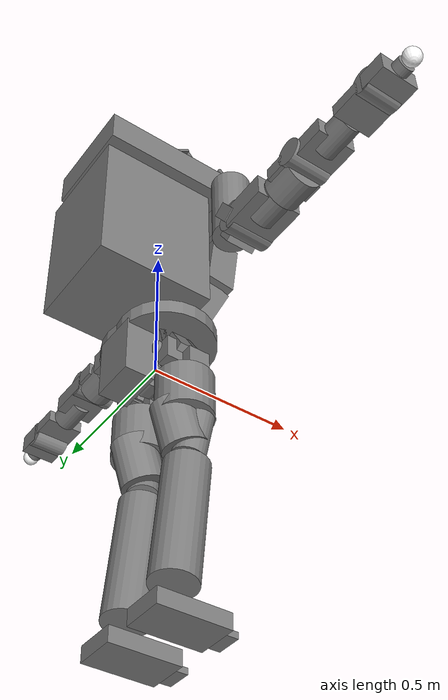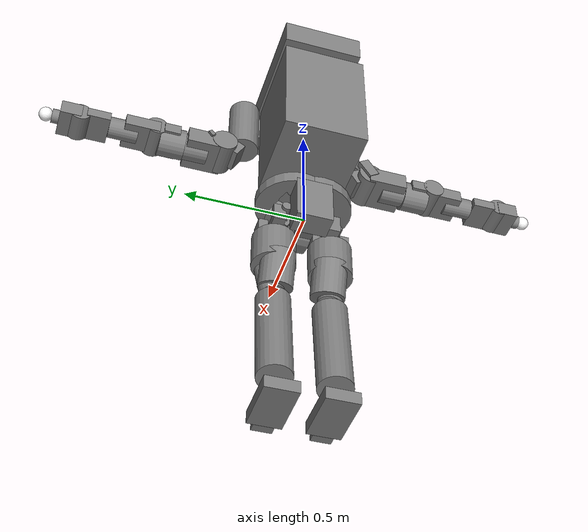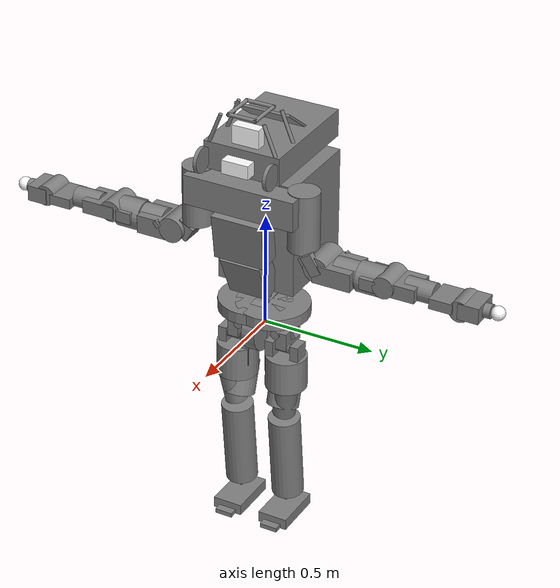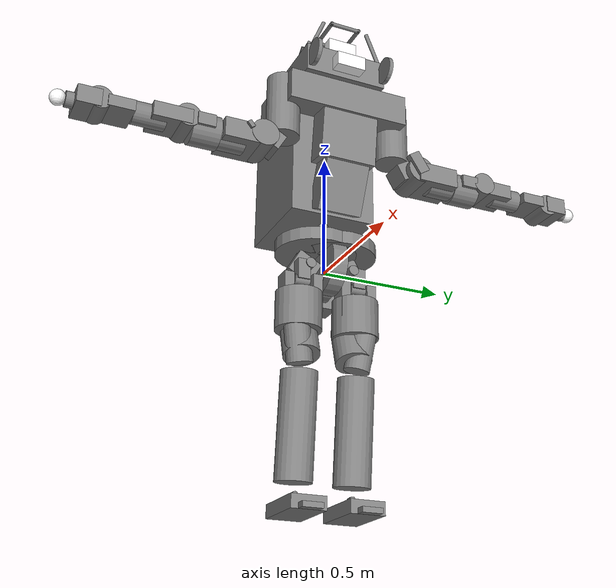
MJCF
<mujoco model="multisense_sl">
    <compiler angle="radian" />
    <size njmax="500" nconmax="100" />
    <worldbody>
        <geom size="0.11 0.03" pos="0.046 0 0.01" quat="0.707107 0.707107 0 0" type="cylinder" />
        <geom size="0.11 0.03" pos="-0.03 0 0.01" quat="0.707107 0.707107 0 0" type="cylinder" />
        <geom size="0.16 0.025" pos="0.01 0.042 0.09" type="cylinder" />
        <geom size="0.16 0.025" pos="0.01 -0.042 0.09" type="cylinder" />
        <geom size="0.05 0.075 0.1" pos="-0.1 0 -0.02" type="box" />
        <body name="ltorso" pos="-0.0125 0 0">
            <inertial pos="-0.0112984 -3.15366e-06 0.0746835" quat="0.997071 0.000128212 0.076485 -0.00012406" mass="2.27" diaginertia="0.003962 0.00341694 0.00169212" />
            <joint name="back_bkz" pos="0 0 0" axis="0 0 1" limited="true" range="-0.663225 0.663225" damping="0.1" />
            <body name="mtorso" pos="0 0 0.162">
                <inertial pos="-0.00816266 -0.0131245 0.0305974" quat="0.108378 0.49314 0.746335 0.433648" mass="0.799" diaginertia="0.000536243 0.000487378 0.000358057" />
                <joint name="back_bky" pos="0 0 0" axis="0 1 0" limited="true" range="-0.219388 0.538783" damping="0.1" />
                <geom size="0.02 0.075" pos="0 0 0.02" type="cylinder" />
                <body name="utorso" pos="0 0 0.05">
                    <inertial pos="-0.0622 0.0023 0.3157" quat="0.450601 -0.0341277 -0.0439518 0.89099" mass="84.409" diaginertia="1.62425 1.5673 0.552443" />
                    <joint name="back_bkx" pos="0 0 0" axis="1 0 0" limited="true" range="-0.523599 0.523599" damping="0.1" />
                    <geom size="0.2 0.175 0.25" pos="-0.102 0 0.25" type="box" />
                    <geom size="0.065 0.25 0.05" pos="0.2 0 0.46" quat="0.707141 0 0.707073 0" type="box" />
                    <geom size="0.1 0.115 0.05" pos="0.2 0 0.285" quat="0.659983 0 0.75128 0" type="box" />
                    <geom size="0.1 0.09 0.05" pos="0.15 0 0.1" quat="0.540302 0 0.841471 0" type="box" />
                    <geom size="0.253153 0.170859 0.06" pos="-0.035 0 0.6265" type="box" />
                    <geom size="0.008 0.065" pos="0.208 0 0.8215" quat="0.707141 0.707073 0 0" type="cylinder" />
                    <geom size="0.008 0.075" pos="0.208 -0.125 0.745" quat="0.981496 -0.191485 0 0" type="cylinder" />
                    <geom size="0.008 0.075" pos="0.208 0.125 0.745" quat="0.981496 0.191485 0 0" type="cylinder" />
                    <geom size="0.008 0.075" pos="0.063 -0.125 0.745" quat="0.981496 -0.191485 0 0" type="cylinder" />
                    <geom size="0.008 0.075" pos="0.063 0.125 0.745" quat="0.981496 0.191485 0 0" type="cylinder" />
                    <geom size="0.008 0.075" pos="0.14 0.06 0.8215" quat="0.500048 0.5 0.499952 0.5" type="cylinder" />
                    <geom size="0.008 0.075" pos="0.14 -0.06 0.8215" quat="0.500048 0.5 0.499952 0.5" type="cylinder" />
                    <geom size="0.1 0.125 0.005" pos="-0.029 0 0.731" quat="0.947651 0 -0.319309 0" type="box" />
                    <geom size="0.008 0.065" pos="0.063 0 0.8215" quat="0.707141 0.707073 0 0" type="cylinder" />
                    <geom size="0.055 0.008" pos="0.261 0.156 0.6215" quat="0.707141 0.707073 0 0" type="cylinder" />
                    <geom size="0.055 0.008" pos="0.261 -0.156 0.6215" quat="0.707141 0.707073 0 0" type="cylinder" />
                    <body name="l_clav" pos="0.1406 0.2256 0.4776" quat="0 0 0 1">
                        <inertial pos="0 -0.048 -0.084" quat="0.684588 0.177029 -0.177029 0.684588" mass="4.466" diaginertia="0.011217 0.011 0.00178301" />
                        <joint name="l_arm_shz" pos="0 0 0" axis="0 0 1" limited="true" range="-1.5708 0.785398" damping="0.1" />
                        <geom size="0.0555 0.07625" pos="0 -0.11 -0.248" quat="0.707107 0 0.707107 0" type="cylinder" />
                        <geom size="0.067 0.13" pos="0.005 -0.015 -0.08" type="cylinder" />
                        <geom size="0.05 0.035 0.036" pos="0.004 -0.064 -0.247" quat="0.865324 0.501213 0 0" type="box" />
                        <body name="l_scap" pos="0 -0.11 -0.245">
                            <inertial pos="0 0 0" quat="0.5 0.5 0.5 0.5" mass="3.899" diaginertia="0.00583 0.00583 0.00319" />
                            <joint name="l_arm_shx" pos="0 0 0" axis="-1 0 0" limited="true" range="-1.5708 1.5708" damping="0.1" />
                            <geom size="0.057 0.0525" pos="-0.005 -0.115 -0.014" quat="0.707107 0.707107 0 0" type="cylinder" />
                            <geom size="0.08 0.085 0.04" pos="-0.005 -0.075 -0.015" type="box" />
                            <geom size="0.01 0.0145 0.009" pos="0.076 -0.0615 0.0128" quat="0.431177 0.902268 0 0" type="box" />
                            <geom size="0.014 0.045 0.025" pos="-0.075 0.015 0.019" quat="0.877583 0.479426 0 0" type="box" />
                            <body name="l_uarm" pos="0 -0.187 -0.016">
                                <inertial pos="0 0.065 0" quat="0.707107 0.707107 0 0" mass="4.386" diaginertia="0.00656 0.00656 0.00358" />
                                <joint name="l_arm_ely" pos="0 0 0" axis="0 -1 0" limited="true" range="0 3.14159" damping="0.2" />
                                <geom size="0.065 0.055" pos="0 -0.035 0" quat="0.707105 0.707108 0 0" type="cylinder" />
                                <geom size="0.047 0.071" pos="-0.005 -0.111 0.017" quat="0.707105 0 0.707108 0" type="cylinder" />
                                <geom size="0.025 0.035 0.075" pos="-0.001 -0.043 0.01" quat="0.707107 0 0.707107 0" type="box" />
                                <body name="l_larm" pos="0 -0.119 0.0092">
                                    <inertial pos="0 0 0" quat="0.5 0.5 0.5 0.5" mass="3.248" diaginertia="0.00446 0.00446 0.00265" />
                                    <joint name="l_arm_elx" pos="0 0 0" axis="-1 0 0" limited="true" range="0 2.35619" damping="0.2" />
                                    <geom size="0.045 0.0625" pos="0.001 -0.127 0" quat="0.707107 0.707107 0 0" type="cylinder" />
                                    <geom size="0.0675 0.075 0.03" pos="0.001 -0.051 0" type="box" />
                                    <body name="l_ufarm" pos="0 -0.187 -0.0092" quat="0 0 1 0">
                                        <inertial pos="0 0.065 0" quat="0.707107 0.707107 0 0" mass="4.386" diaginertia="0.00656 0.00656 0.00358" />
                                        <joint name="l_arm_wry" pos="0 0 0" axis="0 -1 0" limited="true" range="0 3.14159" damping="0.1" />
                                        <geom size="0.045 0.0625" pos="0 -0.13 0.004" quat="0.707105 0 0.707108 0" type="cylinder" />
                                        <geom size="0.0675 0.05 0.0225" pos="0.001 -0.053 -0.002" type="box" />
                                        <body name="l_lfarm" pos="0 -0.119 0.0092">
                                            <inertial pos="0 0 0" quat="0.5 0.5 0.5 0.5" mass="2.509" diaginertia="0.00446 0.00446 0.00265" />
                                            <joint name="l_arm_wrx" pos="0 0 0" axis="1 0 0" limited="true" range="-1.1781 1.1781" damping="0.1" />
                                            <geom size="0.03 0.025" pos="0.001 -0.1 -0.01" quat="0.707107 0.707107 0 0" type="cylinder" />
                                            <geom size="0.065 0.045 0.035" pos="0.001 -0.05 -0.01" type="box" />
                                            <body name="l_hand" pos="0 0 0" quat="0 0 1 0">
                                                <inertial pos="0 0 0" mass="1" diaginertia="0.0001 0.0001 0.0001" />
                                                <joint name="l_arm_wry2" pos="0 0 0" axis="0 1 0" limited="true" range="-0.001 0.001" damping="0.1" />
                                                <geom size="0.03" pos="0 -0.15 0.01" rgba="1 1 1 1" />
                                            </body>
                                        </body>
                                    </body>
                                </body>
                            </body>
                        </body>
                    </body>
                    <body name="head" pos="0.2546 0 0.6215">
                        <inertial pos="-0.075493 3.3383e-05 0.02774" quat="0.945485 -0.000797655 0.325663 -0.000518426" mass="1.41984" diaginertia="0.00466672 0.0041178 0.00282637" />
                        <joint name="neck_ry" pos="0 0 0" axis="0 1 0" limited="true" range="-0.602139 1.14319" damping="0.1" />
                        <geom size="0.06555 0.06 0.02955" pos="-0.0503 0 -0.00195" type="box" rgba="1 1 1 1" />
                        <geom size="0.0234 0.06 0.0592" pos="-0.093 0 0.0868" type="box" rgba="1 1 1 1" />
                    </body>
                    <body name="r_clav" pos="0.1406 -0.2256 0.4776">
                        <inertial pos="0 -0.048 -0.084" quat="0.684588 0.177029 -0.177029 0.684588" mass="4.466" diaginertia="0.011217 0.011 0.00178301" />
                        <joint name="r_arm_shz" pos="0 0 0" axis="0 0 1" limited="true" range="-0.785398 1.5708" damping="0.1" />
                        <geom size="0.0555 0.07625" pos="0 -0.11 -0.248" quat="0.707107 0 0.707107 0" type="cylinder" />
                        <geom size="0.067 0.13" pos="0.005 -0.015 -0.08" type="cylinder" />
                        <geom size="0.05 0.035 0.036" pos="0.004 -0.064 -0.247" quat="0.865324 0.501213 0 0" type="box" />
                        <body name="r_scap" pos="0 -0.11 -0.245">
                            <inertial pos="0 0 0" quat="0.5 0.5 0.5 0.5" mass="3.899" diaginertia="0.00583 0.00583 0.00319" />
                            <joint name="r_arm_shx" pos="0 0 0" axis="1 0 0" limited="true" range="-1.5708 1.5708" damping="0.1" />
                            <geom size="0.057 0.0525" pos="-0.005 -0.115 -0.014" quat="0.707107 0.707107 0 0" type="cylinder" />
                            <geom size="0.08 0.085 0.04" pos="-0.005 -0.075 -0.015" type="box" />
                            <geom size="0.01 0.0145 0.009" pos="0.076 -0.0615 0.0128" quat="0.431177 0.902268 0 0" type="box" />
                            <geom size="0.014 0.045 0.025" pos="-0.075 0.015 0.019" quat="0.877583 0.479426 0 0" type="box" />
                            <body name="r_uarm" pos="0 -0.187 -0.016">
                                <inertial pos="0 0.065 0" quat="0.707107 0.707107 0 0" mass="4.386" diaginertia="0.00656 0.00656 0.00358" />
                                <joint name="r_arm_ely" pos="0 0 0" axis="0 1 0" limited="true" range="0 3.14159" damping="0.2" />
                                <geom size="0.065 0.055" pos="0 -0.035 0" quat="0.707105 0.707108 0 0" type="cylinder" />
                                <geom size="0.047 0.071" pos="-0.005 -0.111 0.017" quat="0.707105 0 0.707108 0" type="cylinder" />
                                <geom size="0.025 0.035 0.075" pos="-0.001 -0.043 0.01" quat="0.707107 0 0.707107 0" type="box" />
                                <body name="r_larm" pos="0 -0.119 0.0092">
                                    <inertial pos="0 0 0" quat="0.5 0.5 0.5 0.5" mass="3.248" diaginertia="0.00446 0.00446 0.00265" />
                                    <joint name="r_arm_elx" pos="0 0 0" axis="1 0 0" limited="true" range="-2.35619 0" damping="0.2" />
                                    <geom size="0.045 0.0625" pos="0.001 -0.127 0" quat="0.707107 0.707107 0 0" type="cylinder" />
                                    <geom size="0.0675 0.075 0.03" pos="0.001 -0.051 0" type="box" />
                                    <body name="r_ufarm" pos="0 -0.187 -0.0092">
                                        <inertial pos="0 0.065 0" quat="0.707107 0.707107 0 0" mass="4.386" diaginertia="0.00656 0.00656 0.00358" />
                                        <joint name="r_arm_wry" pos="0 0 0" axis="0 1 0" limited="true" range="0 3.14159" damping="0.1" />
                                        <geom size="0.045 0.0625" pos="0 -0.13 0.004" quat="0.707105 0 0.707108 0" type="cylinder" />
                                        <geom size="0.0675 0.05 0.0225" pos="0.001 -0.053 -0.002" type="box" />
                                        <body name="r_lfarm" pos="0 -0.119 0.0092">
                                            <inertial pos="0 0 0" quat="0.5 0.5 0.5 0.5" mass="2.509" diaginertia="0.00446 0.00446 0.00265" />
                                            <joint name="r_arm_wrx" pos="0 0 0" axis="1 0 0" limited="true" range="-1.1781 1.1781" damping="0.1" />
                                            <geom size="0.03 0.025" pos="0.001 -0.1 -0.01" quat="0.707107 0.707107 0 0" type="cylinder" />
                                            <geom size="0.065 0.045 0.035" pos="0.001 -0.05 -0.01" type="box" />
                                            <body name="r_hand" pos="0 0 0">
                                                <inertial pos="0 0 0" mass="1" diaginertia="0.0001 0.0001 0.0001" />
                                                <joint name="r_arm_wry2" pos="0 0 0" axis="0 1 0" limited="true" range="-0.001 0.001" damping="0.1" />
                                                <geom size="0.03" pos="0 -0.15 -0.01" rgba="1 1 1 1" />
                                            </body>
                                        </body>
                                    </body>
                                </body>
                            </body>
                        </body>
                    </body>
                </body>
            </body>
        </body>
        <body name="l_uglut" pos="0 0.089 0">
            <inertial pos="0.00529262 -0.00344732 0.00313046" quat="0.999122 -7.72169e-05 0.0419028 -0.000305187" mass="1.959" diaginertia="0.000745109 0.000688179 0.000410071" />
            <joint name="l_leg_hpz" pos="0 0 0" axis="0 0 1" limited="true" range="-0.174358 0.786794" damping="0.1" />
            <geom size="0.025 0.05 0.05" pos="0.01 0.005 0" quat="0.965694 0.259684 0 0" type="box" />
            <geom size="0.019841 0.040421" type="cylinder" />
            <body name="l_lglut" pos="0 0 0">
                <inertial pos="0.0133341 0.0170484 -0.0312052" quat="0.353465 0.600383 0.388609 0.602981" mass="0.898" diaginertia="0.00133867 0.000995812 0.000690275" />
                <joint name="l_leg_hpx" pos="0 0 0" axis="1 0 0" limited="true" range="-0.523599 0.523599" damping="0.1" />
                <geom size="0.0625 0.025 0.04" pos="0.015 0.026 -0.028" type="box" />
                <geom size="0.0200969 0.030153" pos="0.05 0.027488 -0.067" quat="0.707107 0.707107 0 0" type="cylinder" />
                <geom size="0.02 0.072" pos="0.0115 0 0" quat="0.707107 0 0.707107 0" type="cylinder" />
                <body name="l_uleg" pos="0.05 0.0225 -0.066">
                    <inertial pos="0 0 -0.21" mass="8.204" diaginertia="0.09 0.09 0.02" />
                    <joint name="l_leg_hpy" pos="0 0 0" axis="0 1 0" limited="true" range="-1.61234 0.65764" damping="0.1" />
                    <geom size="0.09 0.075" pos="-0.0199 0.00585 -0.122" type="cylinder" />
                    <geom size="0.07 0.075" pos="-0.032 -0.005 -0.224" quat="0.988771 0 -0.149438 0" type="cylinder" />
                    <geom size="0.05 0.075" pos="0.003 0.015 -0.254" quat="0.995083 -0.0747715 0.0647716 0.004867" type="cylinder" />
                    <geom size="0.035 0.019 0.075" pos="-0.007 -0.053 -0.052" type="box" />
                    <geom size="0.035 0.019 0.07" pos="-0.017 0.0595 -0.049" type="box" />
                    <body name="l_lleg" pos="-0.05 0 -0.374">
                        <inertial pos="0.001 0 -0.187" quat="0.999751 0 0.0223266 0" mass="4.515" diaginertia="0.0771341 0.076 0.00986594" />
                        <joint name="l_leg_kny" pos="0 0 0" axis="0 1 0" limited="true" range="0 2.35637" damping="0.2" />
                        <geom size="0.07 0.2" pos="0.02 0.00295 -0.182" quat="0.99875 0 0.0499792 0" type="cylinder" />
                        <body name="l_talus" pos="0 0 -0.422">
                            <inertial pos="0 0 0" quat="0.5 0.5 -0.5 0.5" mass="0.125" diaginertia="1.30101e-05 1.01674e-05 8.42775e-06" />
                            <joint name="l_leg_aky" pos="0 0 0" axis="0 1 0" limited="true" range="-1 0.7" damping="0.1" />
                            <geom size="0.010181 0.014771" quat="0.707107 0 0.707107 0" type="cylinder" />
                            <geom size="0.010348 0.0050295" quat="0.707107 0.707107 0 0" type="cylinder" />
                            <body name="l_foot" pos="0 0 0">
                                <inertial pos="0.027 0 -0.067" quat="0 0.707107 0 0.707107" mass="2.41" diaginertia="0.008 0.007 0.002" />
                                <joint name="l_leg_akx" pos="0 0 0" axis="1 0 0" limited="true" range="-0.8 0.8" damping="0.1" />
                                <geom size="0.1135 0.0669435 0.025" pos="0.023 0 -0.049119" type="box" />
                                <geom size="0.05 0.04 0.01" pos="0.1225 0 -0.0641" type="box" />
                            </body>
                        </body>
                    </body>
                </body>
            </body>
        </body>
        <body name="r_uglut" pos="0 -0.089 0">
            <inertial pos="0.00529262 0.00344732 0.00313046" quat="0.999122 7.72169e-05 0.0419028 0.000305187" mass="1.959" diaginertia="0.000745109 0.000688179 0.000410071" />
            <joint name="r_leg_hpz" pos="0 0 0" axis="0 0 1" limited="true" range="-0.786794 0.174358" damping="0.1" />
            <geom size="0.025 0.05 0.05" pos="0.01 -0.005 0" quat="0.965694 -0.259684 0 0" type="box" />
            <geom size="0.019841 0.040421" type="cylinder" />
            <body name="r_lglut" pos="0 0 0">
                <inertial pos="0.0133341 -0.0170484 -0.0312052" quat="0.602981 0.388609 0.600383 0.353465" mass="0.898" diaginertia="0.00133867 0.000995812 0.000690275" />
                <joint name="r_leg_hpx" pos="0 0 0" axis="1 0 0" limited="true" range="-0.523599 0.523599" damping="0.1" />
                <geom size="0.0625 0.025 0.04" pos="0.015 -0.026 -0.028" type="box" />
                <geom size="0.0200969 0.030153" pos="0.05 -0.027488 -0.067" quat="0.707107 0.707107 0 0" type="cylinder" />
                <geom size="0.02 0.071" pos="0.0105 0 0" quat="0.707107 0 0.707107 0" type="cylinder" />
                <body name="r_uleg" pos="0.05 -0.0225 -0.066">
                    <inertial pos="0 0 -0.21" mass="8.204" diaginertia="0.09 0.09 0.02" />
                    <joint name="r_leg_hpy" pos="0 0 0" axis="0 1 0" limited="true" range="-1.61234 0.65764" damping="0.1" />
                    <geom size="0.09 0.075" pos="-0.0199 -0.00585 -0.122" type="cylinder" />
                    <geom size="0.07 0.075" pos="-0.032 0.005 -0.224" quat="0.988771 0 -0.149438 0" type="cylinder" />
                    <geom size="0.05 0.075" pos="0.003 -0.015 -0.254" quat="0.995083 0.0747715 0.0647716 -0.004867" type="cylinder" />
                    <geom size="0.035 0.019 0.075" pos="-0.007 0.053 -0.052" type="box" />
                    <geom size="0.035 0.019 0.07" pos="-0.017 -0.0595 -0.049" type="box" />
                    <body name="r_lleg" pos="-0.05 0 -0.374">
                        <inertial pos="0.001 0 -0.187" quat="0.999751 0 0.0223266 0" mass="4.515" diaginertia="0.0771341 0.076 0.00986594" />
                        <joint name="r_leg_kny" pos="0 0 0" axis="0 1 0" limited="true" range="0 2.35637" damping="0.2" />
                        <geom size="0.07 0.2" pos="0.02 -0.00295 -0.182" quat="0.99875 0 0.0499792 0" type="cylinder" />
                        <body name="r_talus" pos="0 0 -0.422">
                            <inertial pos="0 0 0" quat="0.5 0.5 -0.5 0.5" mass="0.125" diaginertia="1.30101e-05 1.01674e-05 8.42775e-06" />
                            <joint name="r_leg_aky" pos="0 0 0" axis="0 1 0" limited="true" range="-1 0.7" damping="0.1" />
                            <geom size="0.010181 0.014771" quat="0.707107 0 0.707107 0" type="cylinder" />
                            <geom size="0.010348 0.0050295" quat="0.707107 0.707107 0 0" type="cylinder" />
                            <body name="r_foot" pos="0 0 0">
                                <inertial pos="0.027 0 -0.067" quat="0 0.707107 0 0.707107" mass="2.41" diaginertia="0.008 0.007 0.002" />
                                <joint name="r_leg_akx" pos="0 0 0" axis="1 0 0" limited="true" range="-0.8 0.8" damping="0.1" />
                                <geom size="0.1135 0.0669435 0.025" pos="0.023 0 -0.049119" type="box" />
                                <geom size="0.05 0.04 0.01" pos="0.1225 0 -0.0641" type="box" />
                            </body>
                        </body>
                    </body>
                </body>
            </body>
        </body>
    </worldbody>
</mujoco>
